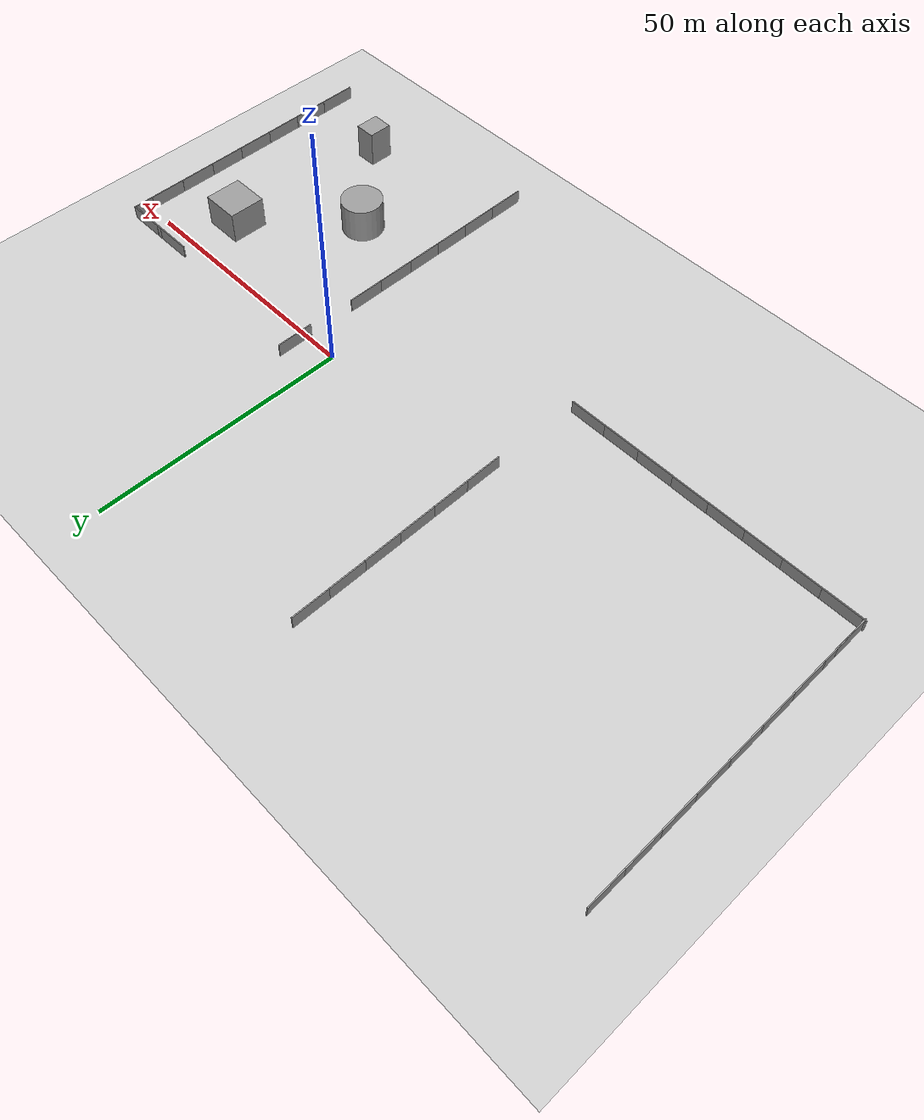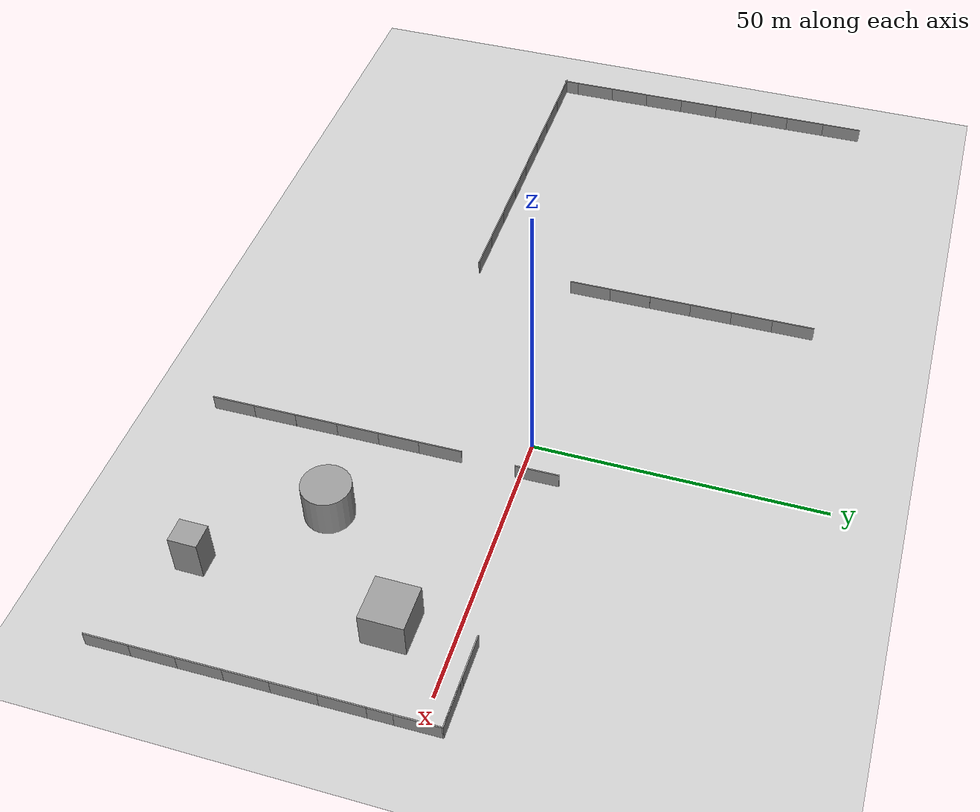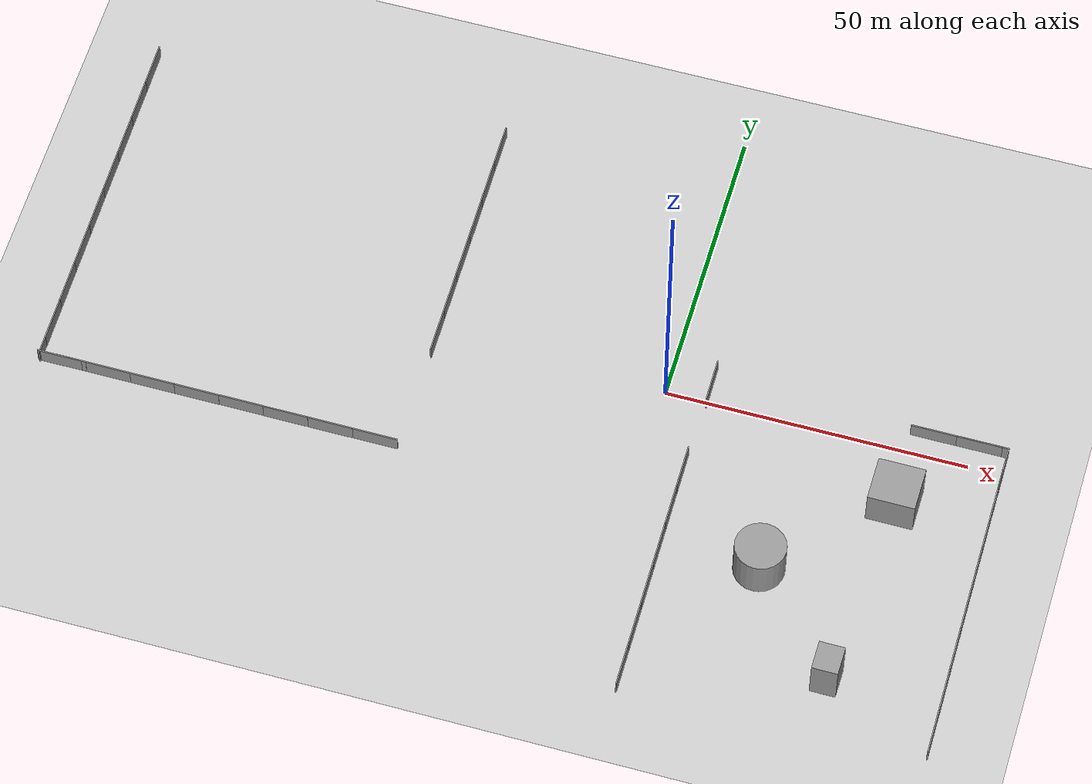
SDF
<sdf version="1.6">
 <world name="default">
  <model name="cft_service_plane">
   <static>1</static>
   <link name="link">
    <collision name="collision">
     <geometry><plane><normal>0 0 1</normal><size>355 355</size></plane></geometry>
     <surface><friction><ode><mu>100</mu><mu2>50</mu2></ode></friction></surface>
    </collision>
    <visual name="visual">
     <cast_shadows>0</cast_shadows>
     <geometry><plane><normal>0 0 1</normal><size>355 355</size></plane></geometry>
     <material>
      <script>
       <uri>model://cft_service_plane/materials/scripts</uri>
       <uri>model://cft_service_plane/materials/textures</uri>
       <name>CftServicePlane/Image</name>
      </script>
     </material>
    </visual>
   </link>
   <pose>-4.25002 -0.610438 0 0 -0 0</pose>
  </model>
  <model name="grey_wall">
   <static>1</static>
   <link name="link">
    <pose>0 0 1.4 0 -0 0</pose>
    <collision name="collision"><geometry><box><size>7.5 0.2 2.8</size></box></geometry></collision>
    <visual name="visual">
     <cast_shadows>0</cast_shadows>
     <geometry><box><size>7.5 0.2 2.8</size></box></geometry>
     <material>
      <script>
       <uri>model://grey_wall/materials/scripts</uri>
       <uri>model://grey_wall/materials/textures</uri>
       <name>vrc/grey_wall</name>
      </script>
     </material>
    </visual>
   </link>
   <pose>-42.1023 -21.8975 0 0 -0 0</pose>
  </model>
  <model name="grey_wall_clone">
   <static>1</static>
   <link name="link">
    <pose>0 0 1.4 0 -0 0</pose>
    <collision name="collision"><geometry><box><size>7.5 0.2 2.8</size></box></geometry></collision>
    <visual name="visual">
     <cast_shadows>0</cast_shadows>
     <geometry><box><size>7.5 0.2 2.8</size></box></geometry>
     <material>
      <script>
       <uri>model://grey_wall/materials/scripts</uri>
       <uri>model://grey_wall/materials/textures</uri>
       <name>vrc/grey_wall</name>
      </script>
     </material>
    </visual>
   </link>
   <pose>-49.6103 -21.9065 0 0 -0 0</pose>
  </model>
  <model name="grey_wall_clone_0">
   <static>1</static>
   <link name="link">
    <pose>0 0 1.4 0 -0 0</pose>
    <collision name="collision"><geometry><box><size>7.5 0.2 2.8</size></box></geometry></collision>
    <visual name="visual">
     <cast_shadows>0</cast_shadows>
     <geometry><box><size>7.5 0.2 2.8</size></box></geometry>
     <material>
      <script>
       <uri>model://grey_wall/materials/scripts</uri>
       <uri>model://grey_wall/materials/textures</uri>
       <name>vrc/grey_wall</name>
      </script>
     </material>
    </visual>
   </link>
   <pose>-57.1261 -21.9003 0 0 -0 0</pose>
  </model>
  <model name="grey_wall_clone_1">
   <static>1</static>
   <link name="link">
    <pose>0 0 1.4 0 -0 0</pose>
    <collision name="collision"><geometry><box><size>7.5 0.2 2.8</size></box></geometry></collision>
    <visual name="visual">
     <cast_shadows>0</cast_shadows>
     <geometry><box><size>7.5 0.2 2.8</size></box></geometry>
     <material>
      <script>
       <uri>model://grey_wall/materials/scripts</uri>
       <uri>model://grey_wall/materials/textures</uri>
       <name>vrc/grey_wall</name>
      </script>
     </material>
    </visual>
   </link>
   <pose>-64.6123 -21.8734 0 0 -0 0</pose>
  </model>
  <model name="grey_wall_clone_2">
   <static>1</static>
   <link name="link">
    <pose>0 0 1.4 0 -0 0</pose>
    <collision name="collision"><geometry><box><size>7.5 0.2 2.8</size></box></geometry></collision>
    <visual name="visual">
     <cast_shadows>0</cast_shadows>
     <geometry><box><size>7.5 0.2 2.8</size></box></geometry>
     <material>
      <script>
       <uri>model://grey_wall/materials/scripts</uri>
       <uri>model://grey_wall/materials/textures</uri>
       <name>vrc/grey_wall</name>
      </script>
     </material>
    </visual>
   </link>
   <pose>-72.0896 -21.8971 0 0 -0 0</pose>
  </model>
  <model name="grey_wall_clone_3">
   <static>1</static>
   <link name="link">
    <pose>0 0 1.4 0 -0 0</pose>
    <collision name="collision"><geometry><box><size>7.5 0.2 2.8</size></box></geometry></collision>
    <visual name="visual">
     <cast_shadows>0</cast_shadows>
     <geometry><box><size>7.5 0.2 2.8</size></box></geometry>
     <material>
      <script>
       <uri>model://grey_wall/materials/scripts</uri>
       <uri>model://grey_wall/materials/textures</uri>
       <name>vrc/grey_wall</name>
      </script>
     </material>
    </visual>
   </link>
   <pose>-79.5923 -21.8923 0 0 -0 0</pose>
  </model>
  <model name="grey_wall_clone_4">
   <static>1</static>
   <link name="link">
    <pose>0 0 1.4 0 -0 0</pose>
    <collision name="collision"><geometry><box><size>7.5 0.2 2.8</size></box></geometry></collision>
    <visual name="visual">
     <cast_shadows>0</cast_shadows>
     <geometry><box><size>7.5 0.2 2.8</size></box></geometry>
     <material>
      <script>
       <uri>model://grey_wall/materials/scripts</uri>
       <uri>model://grey_wall/materials/textures</uri>
       <name>vrc/grey_wall</name>
      </script>
     </material>
    </visual>
   </link>
   <pose>-87.0701 -21.8864 0 0 -0 0</pose>
  </model>
  <model name="grey_wall_clone_5">
   <static>1</static>
   <link name="link">
    <pose>0 0 1.4 0 -0 0</pose>
    <collision name="collision"><geometry><box><size>7.5 0.2 2.8</size></box></geometry></collision>
    <visual name="visual">
     <cast_shadows>0</cast_shadows>
     <geometry><box><size>7.5 0.2 2.8</size></box></geometry>
     <material>
      <script>
       <uri>model://grey_wall/materials/scripts</uri>
       <uri>model://grey_wall/materials/textures</uri>
       <name>vrc/grey_wall</name>
      </script>
     </material>
    </visual>
   </link>
   <pose>-94.5869 -21.89 0 0 -0 0</pose>
  </model>
  <model name="grey_wall_clone_6_clone_10">
   <static>1</static>
   <link name="link">
    <pose>0 0 1.4 0 -0 0</pose>
    <collision name="collision"><geometry><box><size>7.5 0.2 2.8</size></box></geometry></collision>
    <visual name="visual">
     <cast_shadows>0</cast_shadows>
     <geometry><box><size>7.5 0.2 2.8</size></box></geometry>
     <material>
      <script>
       <uri>model://grey_wall/materials/scripts</uri>
       <uri>model://grey_wall/materials/textures</uri>
       <name>vrc/grey_wall</name>
      </script>
     </material>
    </visual>
   </link>
   <pose>-38.6584 37.1274 0 0 0 -1.56149</pose>
  </model>
  <model name="grey_wall_clone_6_clone_10_clone">
   <static>1</static>
   <link name="link">
    <pose>0 0 1.4 0 -0 0</pose>
    <collision name="collision"><geometry><box><size>7.5 0.2 2.8</size></box></geometry></collision>
    <visual name="visual">
     <cast_shadows>0</cast_shadows>
     <geometry><box><size>7.5 0.2 2.8</size></box></geometry>
     <material>
      <script>
       <uri>model://grey_wall/materials/scripts</uri>
       <uri>model://grey_wall/materials/textures</uri>
       <name>vrc/grey_wall</name>
      </script>
     </material>
    </visual>
   </link>
   <pose>-38.5824 29.6554 0 0 0 -1.56149</pose>
  </model>
  <model name="grey_wall_clone_6_clone_10_clone_0">
   <static>1</static>
   <link name="link">
    <pose>0 0 1.4 0 -0 0</pose>
    <collision name="collision"><geometry><box><size>7.5 0.2 2.8</size></box></geometry></collision>
    <visual name="visual">
     <cast_shadows>0</cast_shadows>
     <geometry><box><size>7.5 0.2 2.8</size></box></geometry>
     <material>
      <script>
       <uri>model://grey_wall/materials/scripts</uri>
       <uri>model://grey_wall/materials/textures</uri>
       <name>vrc/grey_wall</name>
      </script>
     </material>
    </visual>
   </link>
   <pose>-38.4977 22.1866 0 0 0 -1.56149</pose>
  </model>
  <model name="grey_wall_clone_6_clone_10_clone_1">
   <static>1</static>
   <link name="link">
    <pose>0 0 1.4 0 -0 0</pose>
    <collision name="collision"><geometry><box><size>7.5 0.2 2.8</size></box></geometry></collision>
    <visual name="visual">
     <cast_shadows>0</cast_shadows>
     <geometry><box><size>7.5 0.2 2.8</size></box></geometry>
     <material>
      <script>
       <uri>model://grey_wall/materials/scripts</uri>
       <uri>model://grey_wall/materials/textures</uri>
       <name>vrc/grey_wall</name>
      </script>
     </material>
    </visual>
   </link>
   <pose>-38.4142 14.6906 0 0 0 -1.56149</pose>
  </model>
  <model name="grey_wall_clone_6_clone_10_clone_2">
   <static>1</static>
   <link name="link">
    <pose>0 0 1.4 0 -0 0</pose>
    <collision name="collision"><geometry><box><size>7.5 0.2 2.8</size></box></geometry></collision>
    <visual name="visual">
     <cast_shadows>0</cast_shadows>
     <geometry><box><size>7.5 0.2 2.8</size></box></geometry>
     <material>
      <script>
       <uri>model://grey_wall/materials/scripts</uri>
       <uri>model://grey_wall/materials/textures</uri>
       <name>vrc/grey_wall</name>
      </script>
     </material>
    </visual>
   </link>
   <pose>-38.3289 7.17508 0 0 0 -1.56149</pose>
  </model>
  <model name="grey_wall_clone_6_clone_10_clone_3">
   <static>1</static>
   <link name="link">
    <pose>0 0 1.4 0 -0 0</pose>
    <collision name="collision"><geometry><box><size>7.5 0.2 2.8</size></box></geometry></collision>
    <visual name="visual">
     <cast_shadows>0</cast_shadows>
     <geometry><box><size>7.5 0.2 2.8</size></box></geometry>
     <material>
      <script>
       <uri>model://grey_wall/materials/scripts</uri>
       <uri>model://grey_wall/materials/textures</uri>
       <name>vrc/grey_wall</name>
      </script>
     </material>
    </visual>
   </link>
   <pose>-38.2563 -0.326388 0 0 0 -1.56149</pose>
  </model>
  <model name="grey_wall_clone_6_clone_10_clone_4">
   <static>1</static>
   <link name="link">
    <pose>0 0 1.4 0 -0 0</pose>
    <collision name="collision"><geometry><box><size>7.5 0.2 2.8</size></box></geometry></collision>
    <visual name="visual">
     <cast_shadows>0</cast_shadows>
     <geometry><box><size>7.5 0.2 2.8</size></box></geometry>
     <material>
      <script>
       <uri>model://grey_wall/materials/scripts</uri>
       <uri>model://grey_wall/materials/textures</uri>
       <name>vrc/grey_wall</name>
      </script>
     </material>
    </visual>
   </link>
   <pose>-99.1918 36.869 0 0 0 -1.56149</pose>
  </model>
  <model name="grey_wall_clone_6_clone_10_clone_5">
   <static>1</static>
   <link name="link">
    <pose>0 0 1.4 0 -0 0</pose>
    <collision name="collision"><geometry><box><size>7.5 0.2 2.8</size></box></geometry></collision>
    <visual name="visual">
     <cast_shadows>0</cast_shadows>
     <geometry><box><size>7.5 0.2 2.8</size></box></geometry>
     <material>
      <script>
       <uri>model://grey_wall/materials/scripts</uri>
       <uri>model://grey_wall/materials/textures</uri>
       <name>vrc/grey_wall</name>
      </script>
     </material>
    </visual>
   </link>
   <pose>-99.129 29.3687 0 0 0 -1.56149</pose>
  </model>
  <model name="grey_wall_clone_6_clone_10_clone_6">
   <static>1</static>
   <link name="link">
    <pose>0 0 1.4 0 -0 0</pose>
    <collision name="collision"><geometry><box><size>7.5 0.2 2.8</size></box></geometry></collision>
    <visual name="visual">
     <cast_shadows>0</cast_shadows>
     <geometry><box><size>7.5 0.2 2.8</size></box></geometry>
     <material>
      <script>
       <uri>model://grey_wall/materials/scripts</uri>
       <uri>model://grey_wall/materials/textures</uri>
       <name>vrc/grey_wall</name>
      </script>
     </material>
    </visual>
   </link>
   <pose>-99.057 21.8923 0 0 0 -1.56149</pose>
  </model>
  <model name="grey_wall_clone_6_clone_10_clone_7">
   <static>1</static>
   <link name="link">
    <pose>0 0 1.4 0 -0 0</pose>
    <collision name="collision"><geometry><box><size>7.5 0.2 2.8</size></box></geometry></collision>
    <visual name="visual">
     <cast_shadows>0</cast_shadows>
     <geometry><box><size>7.5 0.2 2.8</size></box></geometry>
     <material>
      <script>
       <uri>model://grey_wall/materials/scripts</uri>
       <uri>model://grey_wall/materials/textures</uri>
       <name>vrc/grey_wall</name>
      </script>
     </material>
    </visual>
   </link>
   <pose>-98.9896 14.4174 0 0 0 -1.56149</pose>
  </model>
  <model name="grey_wall_clone_6_clone_10_clone_8">
   <static>1</static>
   <link name="link">
    <pose>0 0 1.4 0 -0 0</pose>
    <collision name="collision"><geometry><box><size>7.5 0.2 2.8</size></box></geometry></collision>
    <visual name="visual">
     <cast_shadows>0</cast_shadows>
     <geometry><box><size>7.5 0.2 2.8</size></box></geometry>
     <material>
      <script>
       <uri>model://grey_wall/materials/scripts</uri>
       <uri>model://grey_wall/materials/textures</uri>
       <name>vrc/grey_wall</name>
      </script>
     </material>
    </visual>
   </link>
   <pose>-98.9238 6.94448 0 0 0 -1.56149</pose>
  </model>
  <model name="grey_wall_clone_6_clone_10_clone_9">
   <static>1</static>
   <link name="link">
    <pose>0 0 1.4 0 -0 0</pose>
    <collision name="collision"><geometry><box><size>7.5 0.2 2.8</size></box></geometry></collision>
    <visual name="visual">
     <cast_shadows>0</cast_shadows>
     <geometry><box><size>7.5 0.2 2.8</size></box></geometry>
     <material>
      <script>
       <uri>model://grey_wall/materials/scripts</uri>
       <uri>model://grey_wall/materials/textures</uri>
       <name>vrc/grey_wall</name>
      </script>
     </material>
    </visual>
   </link>
   <pose>-98.8452 -0.540881 0 0 0 -1.56149</pose>
  </model>
  <model name="grey_wall_clone_6_clone_10_clone_10">
   <static>1</static>
   <link name="link">
    <pose>0 0 1.4 0 -0 0</pose>
    <collision name="collision"><geometry><box><size>7.5 0.2 2.8</size></box></geometry></collision>
    <visual name="visual">
     <cast_shadows>0</cast_shadows>
     <geometry><box><size>7.5 0.2 2.8</size></box></geometry>
     <material>
      <script>
       <uri>model://grey_wall/materials/scripts</uri>
       <uri>model://grey_wall/materials/textures</uri>
       <name>vrc/grey_wall</name>
      </script>
     </material>
    </visual>
   </link>
   <pose>-98.7757 -8.0239 0 0 0 -1.56149</pose>
  </model>
  <model name="grey_wall_clone_6_clone_10_clone_11">
   <static>1</static>
   <link name="link">
    <pose>0 0 1.4 0 -0 0</pose>
    <collision name="collision"><geometry><box><size>7.5 0.2 2.8</size></box></geometry></collision>
    <visual name="visual">
     <cast_shadows>0</cast_shadows>
     <geometry><box><size>7.5 0.2 2.8</size></box></geometry>
     <material>
      <script>
       <uri>model://grey_wall/materials/scripts</uri>
       <uri>model://grey_wall/materials/textures</uri>
       <name>vrc/grey_wall</name>
      </script>
     </material>
    </visual>
   </link>
   <pose>-98.7006 -15.5233 0 0 0 -1.56149</pose>
  </model>
  <model name="grey_wall_clone_6_clone_10_clone_12">
   <static>1</static>
   <link name="link">
    <pose>0 0 1.4 0 -0 0</pose>
    <collision name="collision"><geometry><box><size>7.5 0.2 2.8</size></box></geometry></collision>
    <visual name="visual">
     <cast_shadows>0</cast_shadows>
     <geometry><box><size>7.5 0.2 2.8</size></box></geometry>
     <material>
      <script>
       <uri>model://grey_wall/materials/scripts</uri>
       <uri>model://grey_wall/materials/textures</uri>
       <name>vrc/grey_wall</name>
      </script>
     </material>
    </visual>
   </link>
   <pose>-98.6882 -18.4907 0 0 0 -1.56149</pose>
  </model>
  <model name="grey_wall_clone_5_clone">
   <static>1</static>
   <link name="link">
    <pose>0 0 1.4 0 -0 0</pose>
    <collision name="collision"><geometry><box><size>7.5 0.2 2.8</size></box></geometry></collision>
    <visual name="visual">
     <cast_shadows>0</cast_shadows>
     <geometry><box><size>7.5 0.2 2.8</size></box></geometry>
     <material>
      <script>
       <uri>model://grey_wall/materials/scripts</uri>
       <uri>model://grey_wall/materials/textures</uri>
       <name>vrc/grey_wall</name>
      </script>
     </material>
    </visual>
   </link>
   <pose>-95.3168 -21.9004 0 0 -0 0</pose>
  </model>
  <model name="unit_cylinder_0">
   <pose>-56.1287 19.6661 0.000321 -0.000457 4e-06 0.00045</pose>
   <link name="link">
    <inertial>
     <mass>1</mass>
     <inertia><ixx>0.145833</ixx><ixy>0</ixy><ixz>0</ixz><iyy>0.145833</iyy><iyz>0</iyz><izz>0.125</izz></inertia>
    </inertial>
    <collision name="collision">
     <geometry><cylinder><radius>3.57745e-05</radius><length>0.000642188</length></cylinder></geometry>
    </collision>
    <visual name="visual">
     <geometry><cylinder><radius>3.57745e-05</radius><length>0.000642188</length></cylinder></geometry>
     <material>
      <script><name>Gazebo/Grey</name><uri>file://media/materials/scripts/gazebo.material</uri></script>
     </material>
    </visual>
   </link>
  </model>
  <model name="grey_wall_clone_6_clone_10_clone_3_clone">
   <static>1</static>
   <link name="link">
    <pose>0 0 1.4 0 -0 0</pose>
    <collision name="collision"><geometry><box><size>7.5 0.2 2.8</size></box></geometry></collision>
    <visual name="visual">
     <cast_shadows>0</cast_shadows>
     <geometry><box><size>7.5 0.2 2.8</size></box></geometry>
     <material>
      <script>
       <uri>model://grey_wall/materials/scripts</uri>
       <uri>model://grey_wall/materials/textures</uri>
       <name>vrc/grey_wall</name>
      </script>
     </material>
    </visual>
   </link>
   <pose>56.0394 -48.9712 0 0 0 -1.56149</pose>
  </model>
  <model name="grey_wall_clone_6_clone_10_clone_3_clone_0">
   <static>1</static>
   <link name="link">
    <pose>0 0 1.4 0 -0 0</pose>
    <collision name="collision"><geometry><box><size>7.5 0.2 2.8</size></box></geometry></collision>
    <visual name="visual">
     <cast_shadows>0</cast_shadows>
     <geometry><box><size>7.5 0.2 2.8</size></box></geometry>
     <material>
      <script>
       <uri>model://grey_wall/materials/scripts</uri>
       <uri>model://grey_wall/materials/textures</uri>
       <name>vrc/grey_wall</name>
      </script>
     </material>
    </visual>
   </link>
   <pose>55.9791 -41.5066 0 0 0 -1.56149</pose>
  </model>
  <model name="grey_wall_clone_6_clone_10_clone_3_clone_1">
   <static>1</static>
   <link name="link">
    <pose>0 0 1.4 0 -0 0</pose>
    <collision name="collision"><geometry><box><size>7.5 0.2 2.8</size></box></geometry></collision>
    <visual name="visual">
     <cast_shadows>0</cast_shadows>
     <geometry><box><size>7.5 0.2 2.8</size></box></geometry>
     <material>
      <script>
       <uri>model://grey_wall/materials/scripts</uri>
       <uri>model://grey_wall/materials/textures</uri>
       <name>vrc/grey_wall</name>
      </script>
     </material>
    </visual>
   </link>
   <pose>55.9086 -34.0638 0 0 0 -1.56149</pose>
  </model>
  <model name="grey_wall_clone_6_clone_10_clone_3_clone_2">
   <static>1</static>
   <link name="link">
    <pose>0 0 1.4 0 -0 0</pose>
    <collision name="collision"><geometry><box><size>7.5 0.2 2.8</size></box></geometry></collision>
    <visual name="visual">
     <cast_shadows>0</cast_shadows>
     <geometry><box><size>7.5 0.2 2.8</size></box></geometry>
     <material>
      <script>
       <uri>model://grey_wall/materials/scripts</uri>
       <uri>model://grey_wall/materials/textures</uri>
       <name>vrc/grey_wall</name>
      </script>
     </material>
    </visual>
   </link>
   <pose>55.8397 -26.5903 0 0 0 -1.56149</pose>
  </model>
  <model name="grey_wall_clone_6_clone_10_clone_3_clone_3">
   <static>1</static>
   <link name="link">
    <pose>0 0 1.4 0 -0 0</pose>
    <collision name="collision"><geometry><box><size>7.5 0.2 2.8</size></box></geometry></collision>
    <visual name="visual">
     <cast_shadows>0</cast_shadows>
     <geometry><box><size>7.5 0.2 2.8</size></box></geometry>
     <material>
      <script>
       <uri>model://grey_wall/materials/scripts</uri>
       <uri>model://grey_wall/materials/textures</uri>
       <name>vrc/grey_wall</name>
      </script>
     </material>
    </visual>
   </link>
   <pose>55.7778 -19.1946 0 0 0 -1.56149</pose>
  </model>
  <model name="grey_wall_clone_6_clone_10_clone_3_clone_4">
   <static>1</static>
   <link name="link">
    <pose>0 0 1.4 0 -0 0</pose>
    <collision name="collision"><geometry><box><size>7.5 0.2 2.8</size></box></geometry></collision>
    <visual name="visual">
     <cast_shadows>0</cast_shadows>
     <geometry><box><size>7.5 0.2 2.8</size></box></geometry>
     <material>
      <script>
       <uri>model://grey_wall/materials/scripts</uri>
       <uri>model://grey_wall/materials/textures</uri>
       <name>vrc/grey_wall</name>
      </script>
     </material>
    </visual>
   </link>
   <pose>55.7207 -11.7232 0 0 0 -1.56149</pose>
  </model>
  <model name="grey_wall_clone_6_clone_10_clone_3_clone_5">
   <static>1</static>
   <link name="link">
    <pose>0 0 1.4 0 -0 0</pose>
    <collision name="collision"><geometry><box><size>7.5 0.2 2.8</size></box></geometry></collision>
    <visual name="visual">
     <cast_shadows>0</cast_shadows>
     <geometry><box><size>7.5 0.2 2.8</size></box></geometry>
     <material>
      <script>
       <uri>model://grey_wall/materials/scripts</uri>
       <uri>model://grey_wall/materials/textures</uri>
       <name>vrc/grey_wall</name>
      </script>
     </material>
    </visual>
   </link>
   <pose>55.6672 -4.23752 0 0 0 -1.56149</pose>
  </model>
  <model name="grey_wall_clone_6_clone_10_clone_3_clone_6">
   <static>1</static>
   <link name="link">
    <pose>0 0 1.4 0 -0 0</pose>
    <collision name="collision"><geometry><box><size>7.5 0.2 2.8</size></box></geometry></collision>
    <visual name="visual">
     <cast_shadows>0</cast_shadows>
     <geometry><box><size>7.5 0.2 2.8</size></box></geometry>
     <material>
      <script>
       <uri>model://grey_wall/materials/scripts</uri>
       <uri>model://grey_wall/materials/textures</uri>
       <name>vrc/grey_wall</name>
      </script>
     </material>
    </visual>
   </link>
   <pose>55.6519 -0.161772 0 0 0 -1.56149</pose>
  </model>
  <model name="grey_wall_clone_6">
   <static>1</static>
   <link name="link">
    <pose>0 0 1.4 0 -0 0</pose>
    <collision name="collision"><geometry><box><size>7.5 0.2 2.8</size></box></geometry></collision>
    <visual name="visual">
     <cast_shadows>0</cast_shadows>
     <geometry><box><size>7.5 0.2 2.8</size></box></geometry>
     <material>
      <script>
       <uri>model://grey_wall/materials/scripts</uri>
       <uri>model://grey_wall/materials/textures</uri>
       <name>vrc/grey_wall</name>
      </script>
     </material>
    </visual>
   </link>
   <pose>43.401 3.527 0 0 -0 0</pose>
  </model>
  <model name="grey_wall_clone_7">
   <static>1</static>
   <link name="link">
    <pose>0 0 1.4 0 -0 0</pose>
    <collision name="collision"><geometry><box><size>7.5 0.2 2.8</size></box></geometry></collision>
    <visual name="visual">
     <cast_shadows>0</cast_shadows>
     <geometry><box><size>7.5 0.2 2.8</size></box></geometry>
     <material>
      <script>
       <uri>model://grey_wall/materials/scripts</uri>
       <uri>model://grey_wall/materials/textures</uri>
       <name>vrc/grey_wall</name>
      </script>
     </material>
    </visual>
   </link>
   <pose>50.8697 3.53229 0 0 -0 0</pose>
  </model>
  <model name="grey_wall_clone_8">
   <static>1</static>
   <link name="link">
    <pose>0 0 1.4 0 -0 0</pose>
    <collision name="collision"><geometry><box><size>7.5 0.2 2.8</size></box></geometry></collision>
    <visual name="visual">
     <cast_shadows>0</cast_shadows>
     <geometry><box><size>7.5 0.2 2.8</size></box></geometry>
     <material>
      <script>
       <uri>model://grey_wall/materials/scripts</uri>
       <uri>model://grey_wall/materials/textures</uri>
       <name>vrc/grey_wall</name>
      </script>
     </material>
    </visual>
   </link>
   <pose>51.9916 3.53598 0 0 -0 0</pose>
  </model>
  <model name="grey_wall_clone_6_clone_10_clone_3_clone_2_clone">
   <static>1</static>
   <link name="link">
    <pose>0 0 1.4 0 -0 0</pose>
    <collision name="collision"><geometry><box><size>7.5 0.2 2.8</size></box></geometry></collision>
    <visual name="visual">
     <cast_shadows>0</cast_shadows>
     <geometry><box><size>7.5 0.2 2.8</size></box></geometry>
     <material>
      <script>
       <uri>model://grey_wall/materials/scripts</uri>
       <uri>model://grey_wall/materials/textures</uri>
       <name>vrc/grey_wall</name>
      </script>
     </material>
    </visual>
   </link>
   <pose>6.93887 -50.9229 0 0 0 -1.56149</pose>
  </model>
  <model name="grey_wall_clone_6_clone_10_clone_3_clone_2_clone_0">
   <static>1</static>
   <link name="link">
    <pose>0 0 1.4 0 -0 0</pose>
    <collision name="collision"><geometry><box><size>7.5 0.2 2.8</size></box></geometry></collision>
    <visual name="visual">
     <cast_shadows>0</cast_shadows>
     <geometry><box><size>7.5 0.2 2.8</size></box></geometry>
     <material>
      <script>
       <uri>model://grey_wall/materials/scripts</uri>
       <uri>model://grey_wall/materials/textures</uri>
       <name>vrc/grey_wall</name>
      </script>
     </material>
    </visual>
   </link>
   <pose>6.8711 -43.4424 0 0 0 -1.56149</pose>
  </model>
  <model name="grey_wall_clone_6_clone_10_clone_3_clone_2_clone_1">
   <static>1</static>
   <link name="link">
    <pose>0 0 1.4 0 -0 0</pose>
    <collision name="collision"><geometry><box><size>7.5 0.2 2.8</size></box></geometry></collision>
    <visual name="visual">
     <cast_shadows>0</cast_shadows>
     <geometry><box><size>7.5 0.2 2.8</size></box></geometry>
     <material>
      <script>
       <uri>model://grey_wall/materials/scripts</uri>
       <uri>model://grey_wall/materials/textures</uri>
       <name>vrc/grey_wall</name>
      </script>
     </material>
    </visual>
   </link>
   <pose>6.79446 -35.9683 0 0 0 -1.56149</pose>
  </model>
  <model name="grey_wall_clone_6_clone_10_clone_3_clone_2_clone_2">
   <static>1</static>
   <link name="link">
    <pose>0 0 1.4 0 -0 0</pose>
    <collision name="collision"><geometry><box><size>7.5 0.2 2.8</size></box></geometry></collision>
    <visual name="visual">
     <cast_shadows>0</cast_shadows>
     <geometry><box><size>7.5 0.2 2.8</size></box></geometry>
     <material>
      <script>
       <uri>model://grey_wall/materials/scripts</uri>
       <uri>model://grey_wall/materials/textures</uri>
       <name>vrc/grey_wall</name>
      </script>
     </material>
    </visual>
   </link>
   <pose>6.7249 -28.6123 0 0 0 -1.56149</pose>
  </model>
  <model name="grey_wall_clone_6_clone_10_clone_3_clone_2_clone_3">
   <static>1</static>
   <link name="link">
    <pose>0 0 1.4 0 -0 0</pose>
    <collision name="collision"><geometry><box><size>7.5 0.2 2.8</size></box></geometry></collision>
    <visual name="visual">
     <cast_shadows>0</cast_shadows>
     <geometry><box><size>7.5 0.2 2.8</size></box></geometry>
     <material>
      <script>
       <uri>model://grey_wall/materials/scripts</uri>
       <uri>model://grey_wall/materials/textures</uri>
       <name>vrc/grey_wall</name>
      </script>
     </material>
    </visual>
   </link>
   <pose>6.65621 -21.3894 0 0 0 -1.56149</pose>
  </model>
  <model name="grey_wall_clone_6_clone_10_clone_3_clone_2_clone_4">
   <static>1</static>
   <link name="link">
    <pose>0 0 1.4 0 -0 0</pose>
    <collision name="collision"><geometry><box><size>7.5 0.2 2.8</size></box></geometry></collision>
    <visual name="visual">
     <cast_shadows>0</cast_shadows>
     <geometry><box><size>7.5 0.2 2.8</size></box></geometry>
     <material>
      <script>
       <uri>model://grey_wall/materials/scripts</uri>
       <uri>model://grey_wall/materials/textures</uri>
       <name>vrc/grey_wall</name>
      </script>
     </material>
    </visual>
   </link>
   <pose>6.59033 -13.9714 0 0 0 -1.56149</pose>
  </model>
  <model name="grey_wall_clone_6_clone_10_clone_3_clone_2_clone_5">
   <static>1</static>
   <link name="link">
    <pose>0 0 1.4 0 -0 0</pose>
    <collision name="collision"><geometry><box><size>7.5 0.2 2.8</size></box></geometry></collision>
    <visual name="visual">
     <cast_shadows>0</cast_shadows>
     <geometry><box><size>7.5 0.2 2.8</size></box></geometry>
     <material>
      <script>
       <uri>model://grey_wall/materials/scripts</uri>
       <uri>model://grey_wall/materials/textures</uri>
       <name>vrc/grey_wall</name>
      </script>
     </material>
    </visual>
   </link>
   <pose>6.91648 2.86485 0 0 0 -1.56149</pose>
  </model>
  <model name="unit_cylinder_1">
   <pose>22.681 -27.1861 3.57331 0 -1e-06 -0.001249</pose>
   <link name="unit_cylinder_1::link">
    <inertial>
     <mass>1</mass>
     <inertia><ixx>0.145833</ixx><ixy>0</ixy><ixz>0</ixz><iyy>0.145833</iyy><iyz>0</iyz><izz>0.125</izz></inertia>
    </inertial>
    <collision name="collision">
     <geometry><cylinder><radius>4.17368</radius><length>7.14664</length></cylinder></geometry>
    </collision>
    <visual name="visual">
     <geometry><cylinder><radius>4.17368</radius><length>7.14664</length></cylinder></geometry>
     <material>
      <script><name>Gazebo/Grey</name><uri>file://media/materials/scripts/gazebo.material</uri></script>
     </material>
    </visual>
   </link>
  </model>
  <model name="unit_box_0">
   <pose>37.7913 -43.6425 3.74448 0 -1e-06 -0.005412</pose>
   <link name="link">
    <inertial>
     <mass>1</mass>
     <inertia>
      <ixx>0.166667</ixx>
      <ixy>0</ixy>
      <ixz>0</ixz>
      <iyy>0.166667</iyy>
      <iyz>0</iyz>
      <izz>0.166667</izz>
     </inertia>
    </inertial>
    <collision name="collision"><geometry><box><size>4.22812 4.8476 7.48896</size></box></geometry></collision>
    <visual name="visual">
     <geometry><box><size>4.22812 4.8476 7.48896</size></box></geometry>
     <material>
      <script><name>Gazebo/Grey</name><uri>file://media/materials/scripts/gazebo.material</uri></script>
     </material>
    </visual>
   </link>
  </model>
  <model name="unit_box_1">
   <pose>40.3556 -9.91774 3.29014 2e-06 -0 -0.003326</pose>
   <link name="link">
    <inertial>
     <mass>1</mass>
     <inertia>
      <ixx>0.166667</ixx>
      <ixy>0</ixy>
      <ixz>0</ixz>
      <iyy>0.166667</iyy>
      <iyz>0</iyz>
      <izz>0.166667</izz>
     </inertia>
    </inertial>
    <collision name="collision"><geometry><box><size>7.73646 7.41622 6.58029</size></box></geometry></collision>
    <visual name="visual">
     <geometry><box><size>7.73646 7.41622 6.58029</size></box></geometry>
     <material>
      <script><name>Gazebo/Grey</name><uri>file://media/materials/scripts/gazebo.material</uri></script>
     </material>
    </visual>
   </link>
  </model>
 </world>
</sdf>
